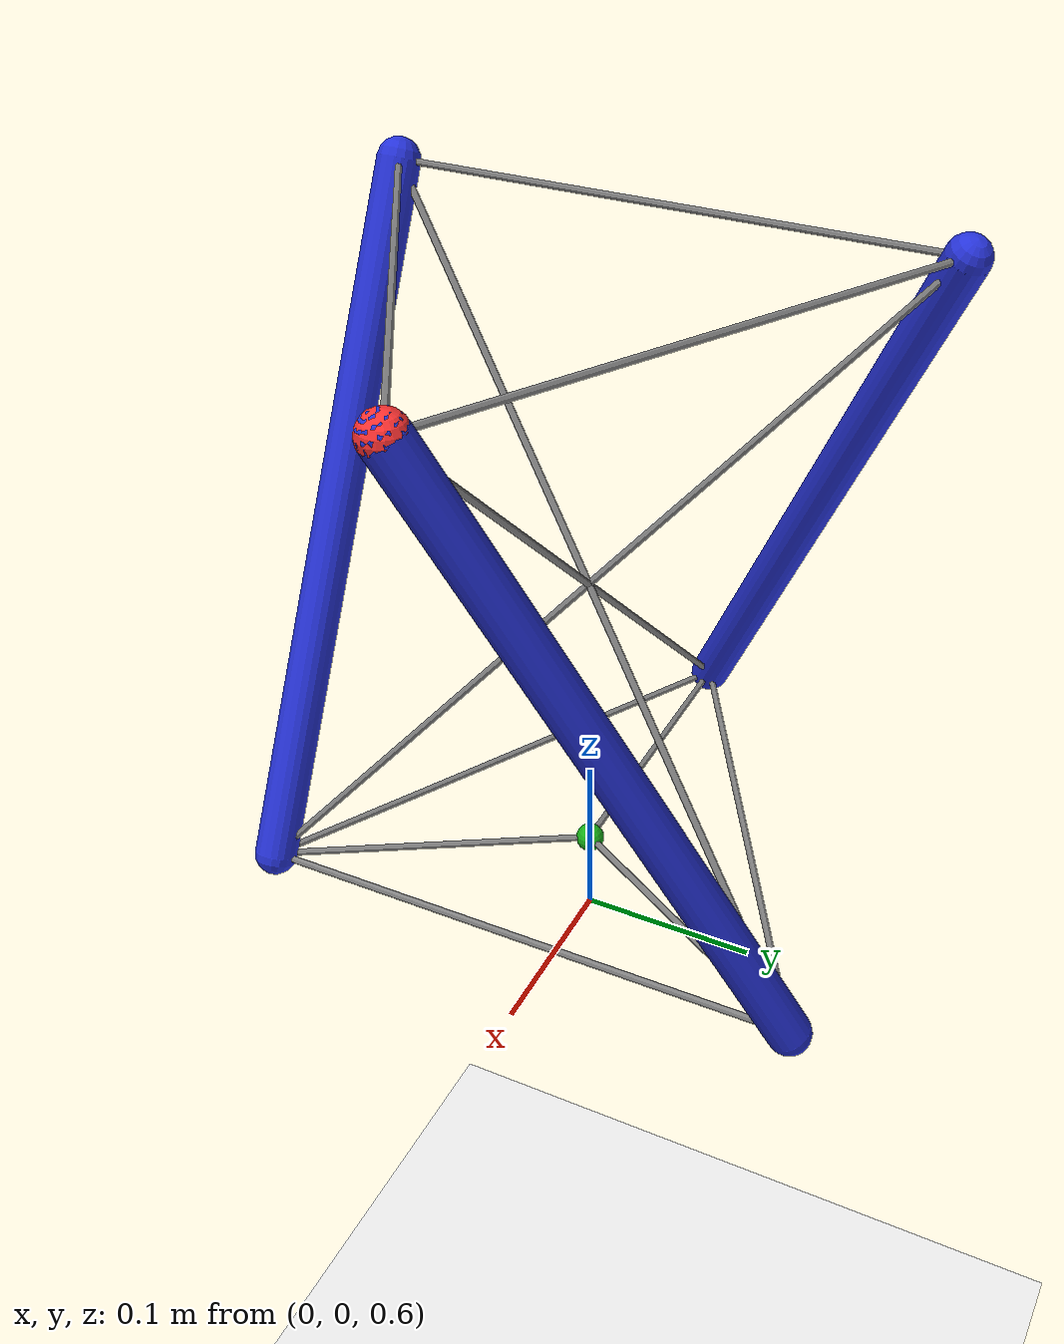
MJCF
<mujoco model="tensegrity_prism_mpc">
  <compiler angle="degree" autolimits="true"/>
  <option timestep="0.002" integrator="RK4" gravity="0 0 0"/>

  <default>
    <joint damping="0.05"/>
    <geom type="capsule" size="0.012" density="700" contype="0" conaffinity="0" rgba="0.15 0.2 0.85 1"/>
    <site size="0.01" rgba="0.9 0.1 0.1 1"/>
    <tendon width="0.002"/>
    <motor ctrllimited="true" ctrlrange="-120 120"/>
  </default>

  <worldbody>
    <light pos="0 0 2" dir="0 0 -1" diffuse="1 1 1"/>
    <geom name="floor" type="plane" size="2 2 0.1" rgba="0.95 0.95 0.95 1" contype="0" conaffinity="0"/>

    <site name="anchor" pos="0 0 0.65" size="0.008" rgba="0.1 0.7 0.1 1"/>

    <body name="strut0" pos="0.135 0.078 0.825">
      <freejoint/>
      <geom fromto="0.045 -0.078 0.175  -0.045 0.078 -0.175"/>
      <site name="s_t0" pos="0.045 -0.078 0.175"/>
      <site name="s_b0" pos="-0.045 0.078 -0.175"/>
    </body>

    <body name="strut1" pos="-0.135 0.078 0.825">
      <freejoint/>
      <geom fromto="0.045 0.078 0.175  -0.045 -0.078 -0.175"/>
      <site name="s_t1" pos="0.045 0.078 0.175"/>
      <site name="s_b1" pos="-0.045 -0.078 -0.175"/>
    </body>

    <body name="strut2" pos="0 -0.156 0.825">
      <freejoint/>
      <geom fromto="-0.09 0 0.175  0.09 0 -0.175"/>
      <site name="s_t2" pos="-0.09 0 0.175"/>
      <site name="s_b2" pos="0.09 0 -0.175"/>
    </body>

    <!-- End-effector marker at a top node for initial control experiments -->
    <site name="ee" pos="0.18 0 1.0" size="0.012" rgba="1 0.2 0.2 1"/>
  </worldbody>

  <tendon>
    <!-- Top ring -->
    <spatial name="t_top01" stiffness="1300" damping="8" springlength="0.30">
      <site site="s_t0"/>
      <site site="s_t1"/>
    </spatial>
    <spatial name="t_top12" stiffness="1300" damping="8" springlength="0.30">
      <site site="s_t1"/>
      <site site="s_t2"/>
    </spatial>
    <spatial name="t_top20" stiffness="1300" damping="8" springlength="0.30">
      <site site="s_t2"/>
      <site site="s_t0"/>
    </spatial>

    <!-- Bottom ring -->
    <spatial name="t_bot01" stiffness="1300" damping="8" springlength="0.30">
      <site site="s_b0"/>
      <site site="s_b1"/>
    </spatial>
    <spatial name="t_bot12" stiffness="1300" damping="8" springlength="0.30">
      <site site="s_b1"/>
      <site site="s_b2"/>
    </spatial>
    <spatial name="t_bot20" stiffness="1300" damping="8" springlength="0.30">
      <site site="s_b2"/>
      <site site="s_b0"/>
    </spatial>

    <!-- Cross tendons (actuated) -->
    <spatial name="t_cross0" stiffness="900" damping="6" springlength="0.48">
      <site site="s_t0"/>
      <site site="s_b1"/>
    </spatial>
    <spatial name="t_cross1" stiffness="900" damping="6" springlength="0.48">
      <site site="s_t1"/>
      <site site="s_b2"/>
    </spatial>
    <spatial name="t_cross2" stiffness="900" damping="6" springlength="0.48">
      <site site="s_t2"/>
      <site site="s_b0"/>
    </spatial>

    <!-- Weak centering tendons to remove free-drift modes in zero gravity -->
    <spatial name="t_anchor0" stiffness="55" damping="4" springlength="0.18">
      <site site="anchor"/>
      <site site="s_b0"/>
    </spatial>
    <spatial name="t_anchor1" stiffness="55" damping="4" springlength="0.18">
      <site site="anchor"/>
      <site site="s_b1"/>
    </spatial>
    <spatial name="t_anchor2" stiffness="55" damping="4" springlength="0.18">
      <site site="anchor"/>
      <site site="s_b2"/>
    </spatial>
  </tendon>

  <actuator>
    <motor name="a_cross0" tendon="t_cross0" gear="1"/>
    <motor name="a_cross1" tendon="t_cross1" gear="1"/>
    <motor name="a_cross2" tendon="t_cross2" gear="1"/>
  </actuator>

  <sensor>
    <framepos name="s_ee_pos" objtype="site" objname="s_t0"/>
    <tendonpos name="s_cross0_len" tendon="t_cross0"/>
    <tendonpos name="s_cross1_len" tendon="t_cross1"/>
    <tendonpos name="s_cross2_len" tendon="t_cross2"/>
  </sensor>
</mujoco>
